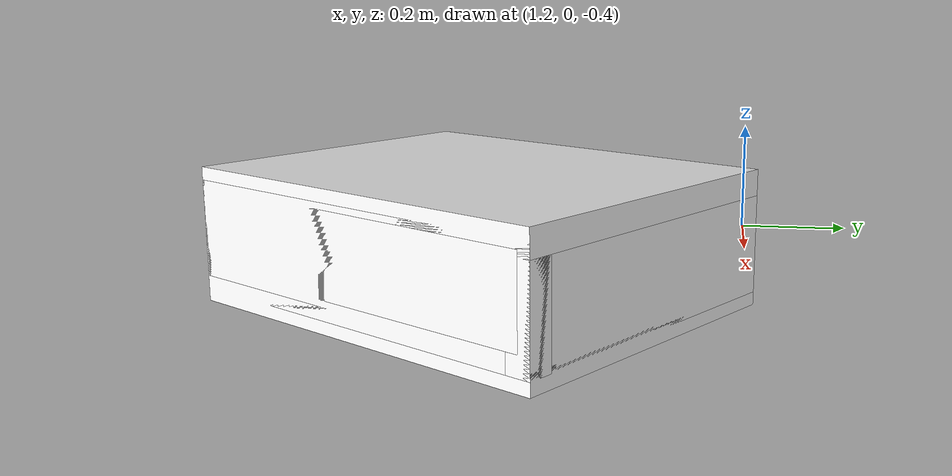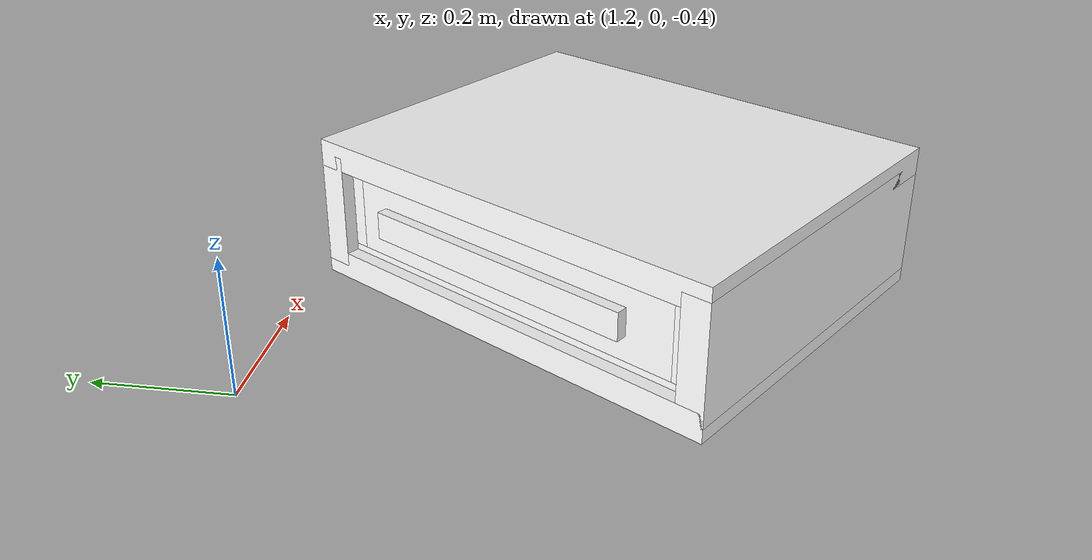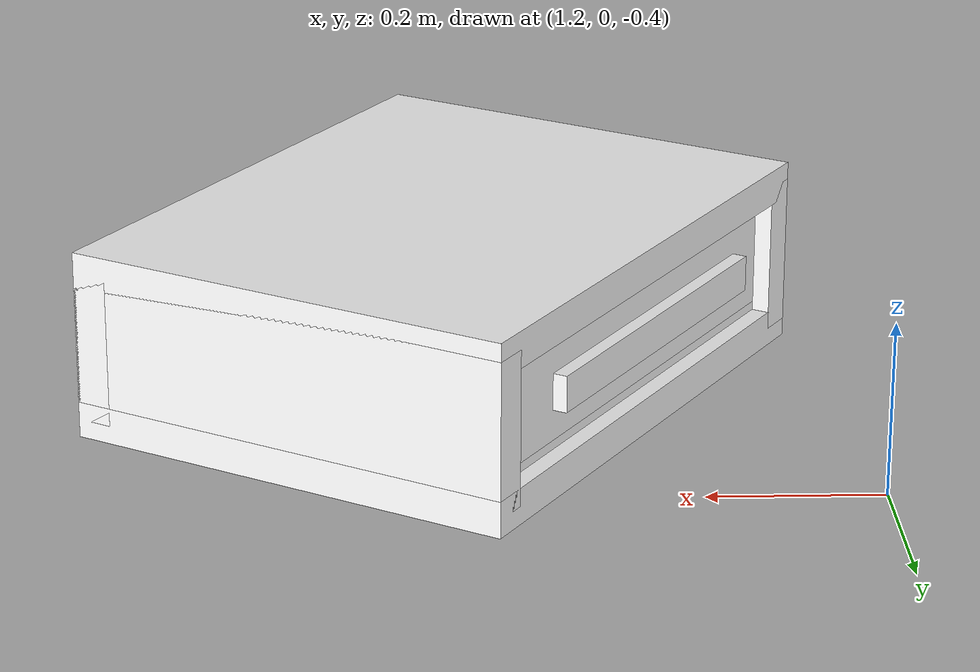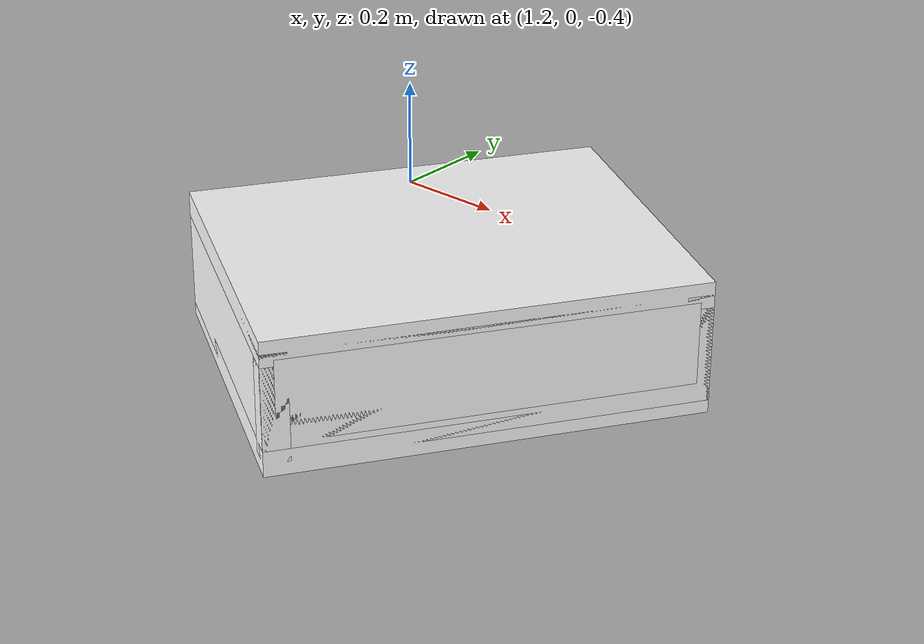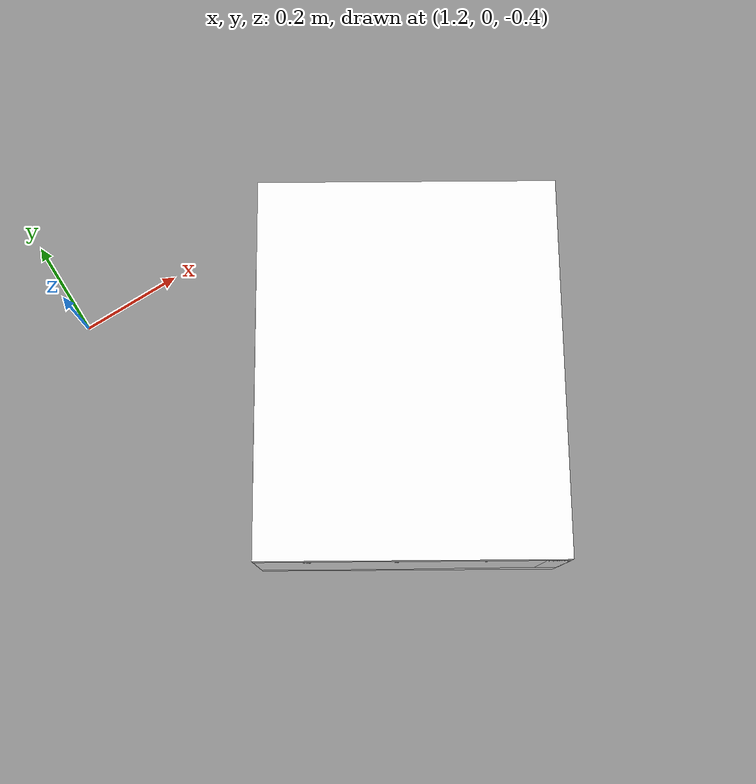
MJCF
<mujoco model="drawer">
        <compiler angle="radian" eulerseq='zxy' />
        <option gravity = "0 0 0" />
        <option>
            <flag contact = "disable"/>
        </option>
        <statistic	extent="1.0" center="0.0 0.0 0.0"/>
        <visual>
            <map fogstart="3" fogend="5" force="0.1" znear=" 0.100000 " zfar=" 12.000000 "/>
        </visual>
        <size njmax="500" nconmax="100" />
        <actuator>
            <velocity joint="drawerJ" name="viva_revolution" kv='10'></velocity>
        </actuator>
        <asset>
            <texture builtin="flat" name="objtex" height="32" width="32" rgb1="1 1 1" type="cube"></texture>
            <texture builtin="flat" name="handletex" height="32" width="32" rgb1="1 1 1" type="cube"></texture>
            <material name="geomObj" shininess="0.03" specular="0.75" texture="objtex"></material>
            <material name="geomHandle" shininess="0.03" specular="0.75" texture="handletex"></material>
        </asset>
        <worldbody>
            <body name="cabinet_bottom" pos= " 1.673487 -0.443837 -0.420633 "  quat= " 0.275697 0.000000 0.000000 0.961245" >
                <inertial pos="0 0 0" mass="1" diaginertia="1 1 1" />
                <geom size= " 0.283168 0.357480 0.021793 "  type="box" material="geomObj" name="b"/>
                <body name="cabinet_left" pos= " 0.000000 -0.335687 0.092281 " >
                    <inertial pos="0 0 0" mass="1" diaginertia="1 1 1" />
                    <geom size= " 0.283168 0.021793 0.092281 "  type="box" material="geomObj" name="c" />
                </body>
                <body name="cabinet_right" pos= " 0.000000 0.335687 0.092281 " >
                    <inertial pos="0 0 0" mass="1" diaginertia="1 1 1" />
                    <geom size= " 0.283168 0.021793 0.092281 "  type="box" material="geomObj" name="d" />
                </body>
                <body name="cabinet_top" pos= " 0.000000 0.000000 0.184562 " >
                    <inertial pos="0 0 0" mass="1" diaginertia="1 1 1" />
                    <geom size= " 0.283168 0.357480 0.021793 "  type="box" material="geomObj" name="e"/>
                </body>
                <body name="cabinet_back" pos= " -0.261375 0.000000 0.092281 "  >
                    <inertial pos="0 0 0" mass="1" diaginertia="1 1 1" />
                    <geom size= " 0.021793 0.357480 0.092281 "  type="box" material="geomObj" name="f" />
                </body>
                <body name="drawer" pos= " 0.000000 0.000000 0.010896 "  >
                    <geom size= " 0.261375 0.335687 0.021793 "  type="box" material="geomObj" name="ddddfadfadsfac" />
                    <joint name="drawerJ" pos="0 0 0" axis="1 0 0" type="slide" limited="true" range= "0  0.4247516691684723 "  />
                    <inertial pos="0 0 0" mass="1" diaginertia="1 1 1" />
                    <body name="drawer_left" pos= " 0.000000 -0.313895 0.092281 " >
                        <inertial pos="0 0 0" mass="1" diaginertia="1 1 1" />
                        <geom size= " 0.261375 0.021793 0.070488 "  type="box" material="geomObj" name="ddc" />
                    </body>
                    <body name="drawer_right" pos= " 0.000000 0.313895 0.092281 " >
                        <inertial pos="0 0 0" mass="1" diaginertia="1 1 1" />
                        <geom size= " 0.261375 0.021793 0.070488 "  type="box" material="geomObj" name="dddd" />
                    </body>
                    <body name="drawer_front" pos= " 0.239582 0.000000 0.092281 " >
                        <inertial pos="0 0 0" mass="1" diaginertia="1 1 1" />
                        <geom size= " 0.021793 0.335687 0.070488 "  type="box" material="geomObj" name="eeeee"/>
                    </body>
                    <body name="drawer_back" pos= " -0.261375 0.000000 0.092281 "  >
                        <inertial pos="0 0 0" mass="1" diaginertia="1 1 1" />
                        <geom size= " 0.021793 0.335687 0.070488 "  type="box" material="geomObj" name="fffff" />
                    </body>
                    <body name="knob" pos= " 0.283168 0.000000 0.092281 " >
                        <inertial pos="0 0 0" mass="0.1" diaginertia="0.1 0.1 0.1" />
                        <geom size= " 0.008757 0.226105 0.021902 "  pos="0 0 0" type="box" material="geomHandle" name="handle"/>
                    </body>
                </body>
            </body>
            <body name="external_camera_body_0" pos="0.0 0 0.00">
                <camera euler="-1.57 1.57 0.0" fovy=" 54.280851 " name="external_camera_0" pos="0.0 0 0"></camera>
                <inertial pos= " 0.00 0.0 0.000000 " mass="1" diaginertia="1 1 1" />
                <joint name="cam_j" pos="0.0 0 0" axis = "1 0 0" type="free" />
            </body>
        </worldbody>
    </mujoco>
